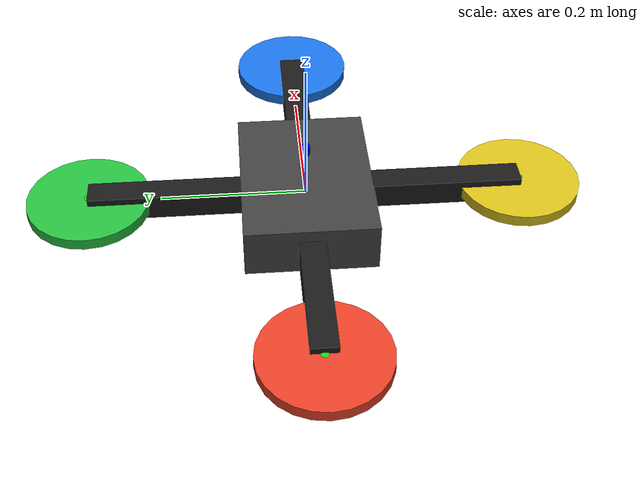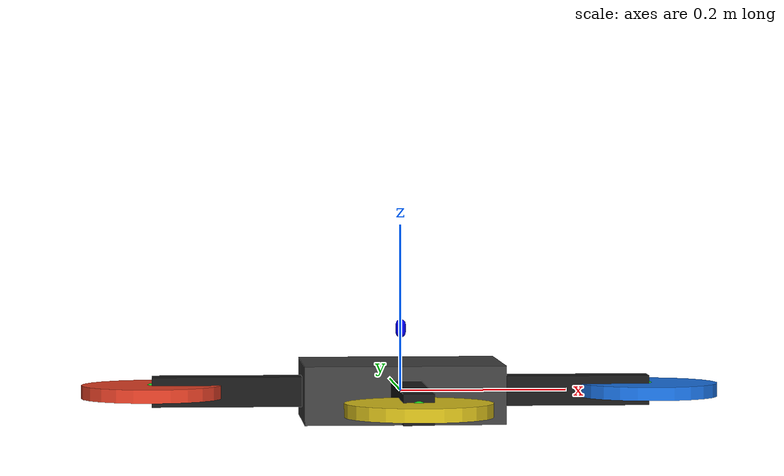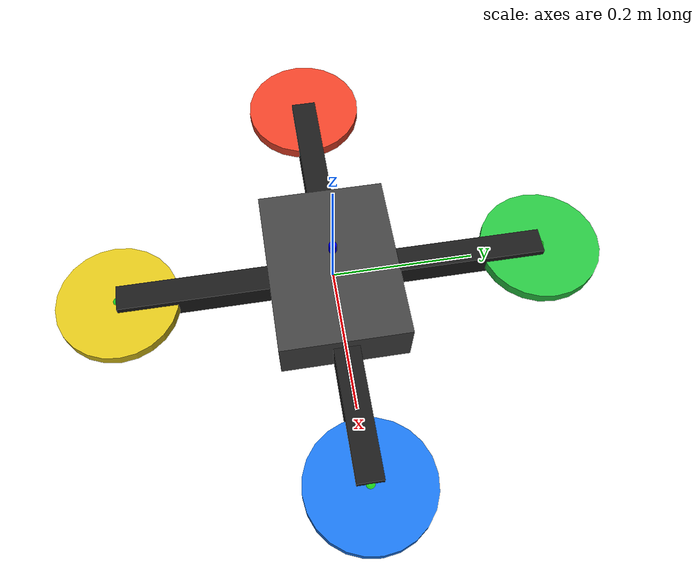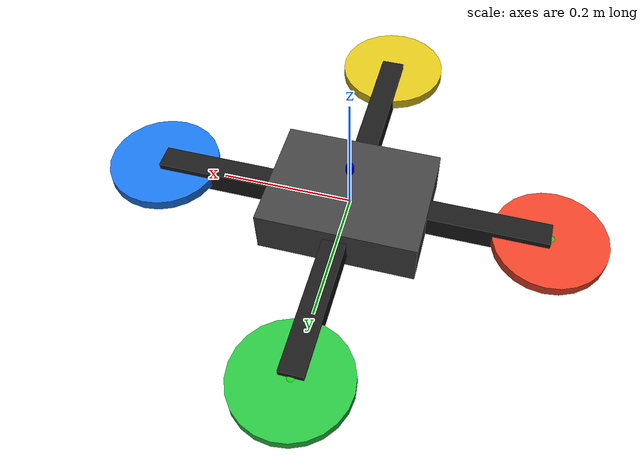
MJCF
<mujoco model="quadrotor_attitude_sitl">

    <compiler angle="radian" autolimits="true" inertiafromgeom="false"/>

    <option timestep="0.0025"
            integrator="RK4"
            gravity="0 0 0"
            iterations="50"
            tolerance="1e-10"/>

    <size njmax="100" nconmax="100"/>

    <default>
        <geom contype="0" conaffinity="0" density="0"/>
        <site size="0.01" rgba="0.1 0.8 0.1 1"/>
    </default>

    <worldbody>
        <body name="base" pos="0 0 0">
            <!-- The Python pipeline requires a free joint. -->
            <freejoint name="base_free"/>

            <inertial
                      pos="0 0 0"
                      mass="1.20"
                      diaginertia="0.020 0.020 0.035"/>

            <!-- Central quadrotor body -->
            <geom name="main_body"
                  type="box"
                  pos="0 0 0"
                  size="0.12 0.09 0.035"
                  rgba="0.25 0.25 0.25 1"/>

            <!-- Forward/back and left/right arms -->
            <geom name="arm_x"
                  type="box"
                  fromto="-0.30 0 0 0.30 0 0"
                  size="0.018"
                  rgba="0.10 0.10 0.10 1"/>
            <geom name="arm_y"
                  type="box"
                  fromto="0 -0.30 0 0 0.30 0"
                  size="0.018"
                  rgba="0.10 0.10 0.10 1"/>

            <!-- Rotor visual markers: no independent rotor dynamics are used. -->
            <body name="rotor_front" pos="0.30 0 0">
                <geom name="rotor_front_disk"
                      type="cylinder"
                      size="0.085 0.008"
                      rgba="0.10 0.45 0.90 1"/>
                <site name="rotor_front_site" pos="0 0 0"/>
            </body>

            <body name="rotor_back" pos="-0.30 0 0">
                <geom name="rotor_back_disk"
                      type="cylinder"
                      size="0.085 0.008"
                      rgba="0.90 0.25 0.15 1"/>
                <site name="rotor_back_site" pos="0 0 0"/>
            </body>

            <body name="rotor_left" pos="0 0.30 0">
                <geom name="rotor_left_disk"
                      type="cylinder"
                      size="0.085 0.008"
                      rgba="0.15 0.75 0.25 1"/>
                <site name="rotor_left_site" pos="0 0 0"/>
            </body>

            <body name="rotor_right" pos="0 -0.30 0">
                <geom name="rotor_right_disk"
                      type="cylinder"
                      size="0.085 0.008"
                      rgba="0.85 0.75 0.10 1"/>
                <site name="rotor_right_site" pos="0 0 0"/>
            </body>

            <!-- Body-frame axes for visual debugging. -->
            <site name="axis_x" type="capsule" pos="0.075 0 0" size="0.006" rgba="1 0 0 1"/>
            <site name="axis_y" type="capsule" pos="0 0.075 0" size="0.006" rgba="0 1 0 1"/>
            <site name="axis_z" type="capsule" pos="0 0 0.075" size="0.006" rgba="0 0 1 1"/>
        </body>
    </worldbody>
</mujoco>
